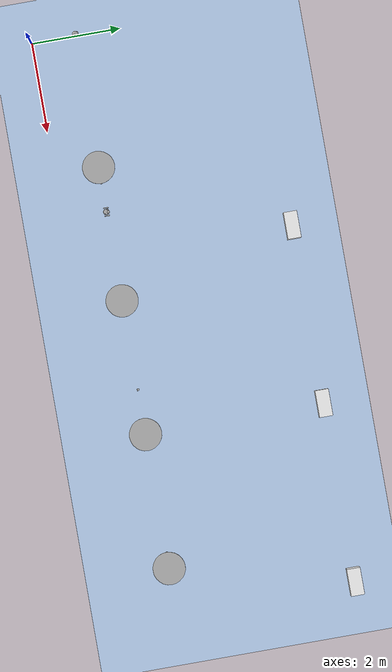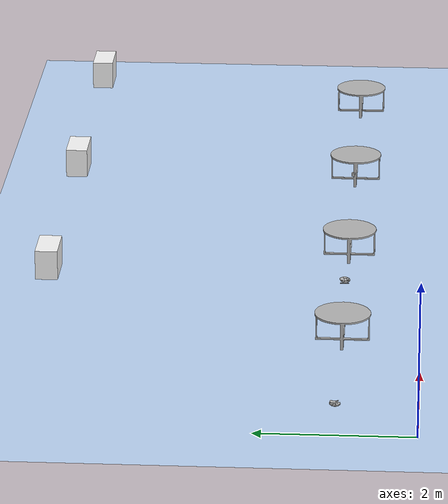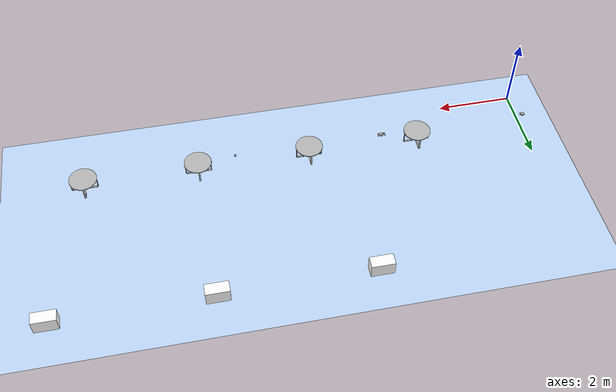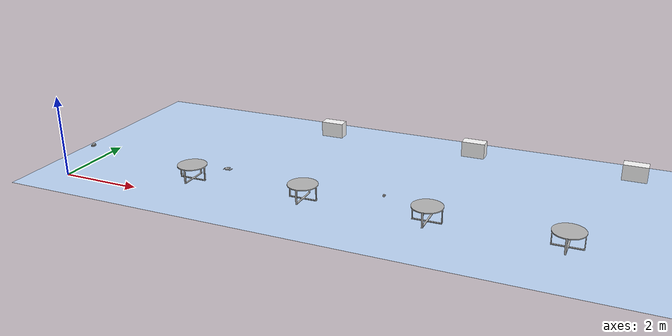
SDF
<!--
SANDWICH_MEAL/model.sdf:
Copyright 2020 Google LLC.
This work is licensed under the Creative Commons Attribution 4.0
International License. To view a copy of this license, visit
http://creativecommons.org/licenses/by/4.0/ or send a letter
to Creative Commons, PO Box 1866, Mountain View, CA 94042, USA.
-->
<sdf version="1.7">
 <world name="food_court">
  <plugin filename="gz-sim-physics-system" name="gz::sim::systems::Physics"/>
  <plugin filename="gz-sim-user-commands-system" name="gz::sim::systems::UserCommands"/>
  <plugin filename="gz-sim-scene-broadcaster-system" name="gz::sim::systems::SceneBroadcaster"/>
  <plugin filename="gz-sim-sensors-system" name="gz::sim::systems::Sensors">
   <render_engine>ogre2</render_engine>
  </plugin>
  <plugin filename="gz-sim-imu-system" name="gz::sim::systems::Imu"/>
  <physics name="1ms" type="ignored">
   <max_step_size>0.001</max_step_size>
   <real_time_factor>1.0</real_time_factor>
  </physics>
  <light type="directional" name="sun">
   <cast_shadows>false</cast_shadows>
   <pose>0 0 10 0 0 0</pose>
   <diffuse>0.8 0.8 0.8 1</diffuse>
   <specular>0.2 0.2 0.2 1</specular>
   <attenuation>
    <range>1000</range>
    <constant>0.9</constant>
    <linear>0.01</linear>
    <quadratic>0.001</quadratic>
   </attenuation>
   <direction>-0.5 0.1 -0.9</direction>
  </light>
  <model name="ground_plane">
   <static>true</static>
   <link name="link">
    <collision name="ground_collision">
     <geometry><plane><normal>0 0 1</normal><size>30 30</size></plane></geometry>
    </collision>
    <visual name="ground_visual">
     <geometry><plane><normal>0 0 1</normal><size>30 30</size></plane></geometry>
     <material>
      <ambient>0.75 0.85 0.98 1</ambient>
      <diffuse>0.75 0.85 0.98 1</diffuse>
      <specular>0.05 0.05 0.05 1</specular>
     </material>
    </visual>
   </link>
  </model>
  <include><uri>model://stall_salad</uri><pose>5 5.0 0.25 0 0 0</pose></include>
  <include><uri>model://stall_chicken</uri><pose>9 5.0 0.25 0 0 0</pose></include>
  <include><uri>model://stall_drinks</uri><pose>13 5.0 0.25 0 0 0</pose></include>
  <include><uri>model://CoffeeTable</uri><name>coffee1</name><pose>3 1 0 0 0 0</pose></include>
  <include><uri>model://CoffeeTable</uri><name>coffee2</name><pose>6 1 0 0 0 0</pose></include>
  <include><uri>model://CoffeeTable</uri><name>coffee3</name><pose>9 1 0 0 0 0</pose></include>
  <include><uri>model://CoffeeTable</uri><name>coffee4</name><pose>12 1 0 0 0 0</pose></include>
  <include><uri>model://SANDWICH_MEAL</uri><name>food1</name><pose>0 1.0039 0.4081 0 0 0</pose></include>
  <include><uri>model://STEAK_SET</uri><name>food2</name><pose>4 1.0039 0.4081 0 0 0</pose></include>
  <include><uri>model://pepsi2</uri><name>food3</name><pose>8 1.0039 0.4081 0 0 0</pose></include>
 </world>
</sdf>

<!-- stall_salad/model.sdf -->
<sdf version="1.9">
    <model name="stall_salad">
        <static>true</static>
        <link name="link">
            <collision name="col">
                <geometry><box><size>0.6 0.3 0.4</size></box></geometry>
            </collision>
            <visual name="vis">
                <geometry><box><size>0.6 0.3 0.4</size></box></geometry>
                <material>
                    <ambient>1 1 1 1</ambient>
                    <diffuse>1 1 1 1</diffuse>
                    <specular>0 0 0 1</specular>
                    <pbr>
                        <metal>
                            <albedo_map>model://stall_salad/materials/textures/greensalads.png</albedo_map>
                            <roughness>1.0</roughness>
                            <metalness>0.0</metalness>
                        </metal>
                    </pbr>
                </material>
            </visual>
        </link>
    </model>
</sdf>

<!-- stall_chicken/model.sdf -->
<sdf version="1.9">
    <model name="stall_chicken">
        <static>true</static>
        <link name="link">
            <collision name="col">
                <geometry><box><size>0.6 0.3 0.4</size></box></geometry>
            </collision>
            <visual name="vis">
                <geometry><box><size>0.6 0.3 0.4</size></box></geometry>
                <material>
                    <ambient>1 1 1 1</ambient>
                    <diffuse>1 1 1 1</diffuse>
                    <specular>0 0 0 1</specular>
                    <pbr>
                        <metal>
                            <albedo_map>model://stall_chicken/materials/textures/cookdokoochicken.png</albedo_map>
                            <roughness>1.0</roughness>
                            <metalness>0.0</metalness>
                        </metal>
                    </pbr>
                </material>
            </visual>
        </link>
    </model>
</sdf>

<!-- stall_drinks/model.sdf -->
<sdf version="1.9">
    <model name="stall_drinks">
        <static>true</static>
        <link name="link">
            <collision name="col">
                <geometry><box><size>0.6 0.3 0.4</size></box></geometry>
            </collision>
            <visual name="vis">
                <geometry><box><size>0.6 0.3 0.4</size></box></geometry>
                <material>
                    <ambient>1 1 1 1</ambient>
                    <diffuse>1 1 1 1</diffuse>
                    <specular>0 0 0 1</specular>
                    <pbr>
                        <metal>
                            <albedo_map>model://stall_drinks/materials/textures/colddrinks.png</albedo_map>
                            <roughness>1.0</roughness>
                            <metalness>0.0</metalness>
                        </metal>
                    </pbr>
                </material>
            </visual>
        </link>
    </model>
</sdf>

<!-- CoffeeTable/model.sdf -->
<sdf version="1.6">
  <model name='CoffeeTable'>
    <link name="body">
      <pose>0 0 0 0 0 0</pose>

      <visual name="visual">
        <geometry>
          <mesh>
            <uri>model://CoffeeTable/meshes/CoffeeTable.obj</uri>
            <scale>0.00817 0.00817 0.00817</scale>
          </mesh>
        </geometry>
      </visual>

      <collision name="collision">
        <geometry>
          <mesh>
            <uri>model://CoffeeTable/meshes/CoffeeTable.obj</uri>
            <scale>0.00817 0.00817 0.00817</scale>
          </mesh>
        </geometry>
      </collision>

    </link>
  </model>
</sdf>

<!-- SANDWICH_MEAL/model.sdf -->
<sdf version="1.6">
  <model name="SANDWICH_MEAL">
    <link name="link_0">
      <visual name="visual">
        <geometry>
          <mesh>
            <uri>meshes/model.obj</uri>
          </mesh>
        </geometry>
      </visual>
      <collision name="collision_0">
        <geometry>
          <mesh>
            <uri>meshes/model.obj</uri>
          </mesh>
        </geometry>
      <surface>
        <friction>
          <ode>
            <mu>1.5</mu>
            <mu2>1.5</mu2>
          </ode>
        </friction>
        <contact>
          <ode>
            <kp>100000</kp>
            <kd>1.0</kd>
          </ode>
        </contact>
      </surface>
      </collision>
    </link>
  </model>
</sdf>

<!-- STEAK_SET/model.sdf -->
<sdf version="1.6">
  <model name="STEAK_SET">
    <link name="link_0">
      <visual name="visual">
        <geometry>
          <mesh>
            <uri>meshes/model.obj</uri>
          </mesh>
        </geometry>
      </visual>
      <collision name="collision_0">
        <geometry>
          <mesh>
            <uri>meshes/model.obj</uri>
          </mesh>
        </geometry>
        <surface>
          <friction>
            <ode>
              <mu>1.5</mu>
              <mu2>1.5</mu2>
            </ode>
          </friction>

          <contact>
            <ode>
              <kp>100000</kp>
              <kd>1.0</kd>
            </ode>
          </contact>
        </surface>
      </collision>
    </link>
  </model>
</sdf>

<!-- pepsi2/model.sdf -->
<sdf version="1.6">
<model name="pepsi2">
  <link name="link_0">

    <inertial>
      <mass>0.35</mass>
      <inertia>
        <ixx>0.000810</ixx>
        <iyy>0.000810</iyy>
        <izz>0.000306</izz>
        <ixy>0</ixy>
        <ixz>0</ixz>
        <iyz>0</iyz>
      </inertia>
    </inertial>

    <!-- VISUAL -->
    <visual name="visual">
      <geometry>
        <mesh>
          <uri>meshes/model.obj</uri>
          <scale>0.3 0.3 0.3</scale>
        </mesh>
      </geometry>
    </visual>

    <!-- COLLISION — simple box approximating the can -->
    <collision name="collision_0">
      <geometry>
        <box>
          <size>0.068 0.068 0.12</size>
        </box>
      </geometry>
      <surface>
        <friction>
          <ode>
            <mu>1.2</mu>
            <mu2>1.2</mu2>
            <fdir1>1 0 0</fdir1>
            <slip1>0.0</slip1>
            <slip2>0.0</slip2>
          </ode>
        </friction>
        <contact>
          <kp>100000</kp>
          <kd>10</kd>
        </contact>
      </surface>
    </collision>

  </link>
</model>
</sdf>
